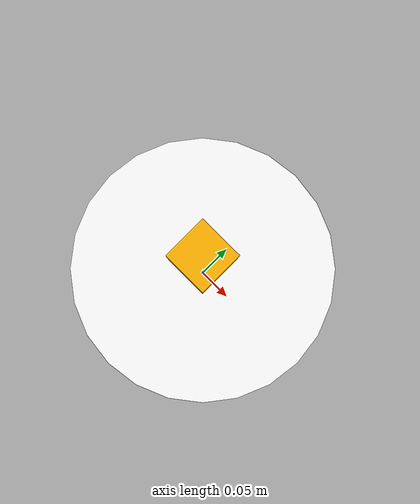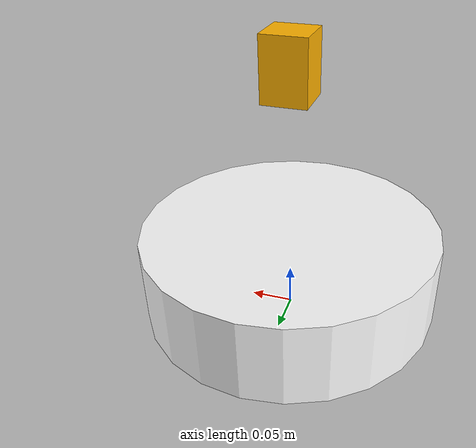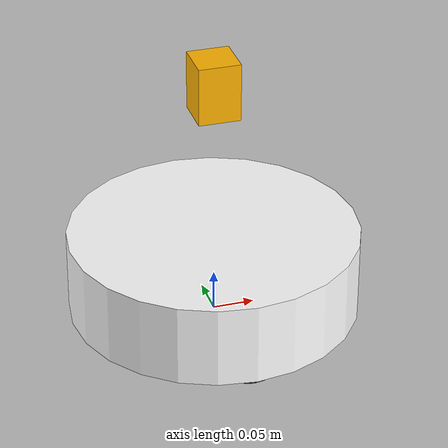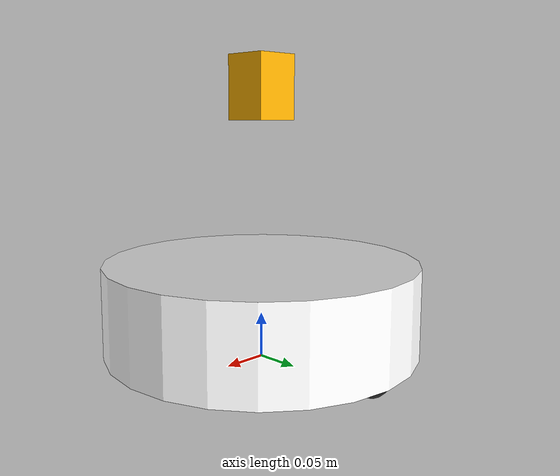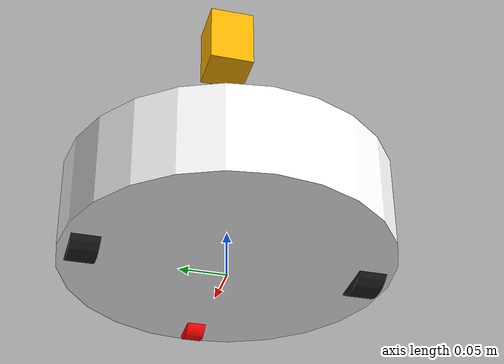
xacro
<?xml version="1.0" ?>

<robot
  xmlns:xacro="http://www.ros.org/wiki/xacro"
  name="kobuki"
  >

  <!-- ************************** Xacro ************************** -->

  <xacro:property name="bias" value="0.298" />
  <xacro:property name="wheel_radius" value="0.042" />
  <xacro:property name="pi" value="3.1415926535897931" />

  <xacro:property name="material_white">
    <material name="white">
      <color rgba="1 1 1 1"/>
    </material>
  </xacro:property>
  <xacro:property name="material_orange">
    <material name="orange">
      <color rgba="1.0 0.7 0.0 1"/>
    </material>
  </xacro:property>
  <xacro:property name="material_grey_blue">
    <material name="grey_blue">
      <color rgba="0.4 0.4 1.0 1"/>
    </material>
  </xacro:property>
  <xacro:property name="material_blue">
    <material name="blue">
      <color rgba="0.0 0.0 1.0 1"/>
    </material>
  </xacro:property>
  <xacro:property name="material_green">
    <material name="green">
      <color rgba="0 .8 0 1"/>
    </material>
  </xacro:property>
  <xacro:property name="material_black">
    <material name="black">
      <color rgba="0.1 0.1 0.1 1"/>
    </material>
  </xacro:property>
  <xacro:property name="material_red">
    <material name="red">
      <color rgba="1 0 0 1"/>
    </material>
  </xacro:property>

  <xacro:macro name="wheel" params="name length radius off_x off_y off_z type *colors">
    <link name="${name}">
      <visual>
        <geometry>
          <cylinder length="${length}" radius="${radius}"/>
     	  </geometry>
        <origin rpy="0 ${pi/2} 0" xyz="0 0 0"/>

		<xacro:insert_block name="colors" />

      </visual>
    </link>
    <joint name="${name}" type="${type}">
      <parent link="base_link"/>
      <child link="${name}"/>
      <origin rpy="0 0 ${pi/2}" xyz="${off_x} ${off_y} ${off_z}"/>
    </joint>
  </xacro:macro>

  <!-- ************************** Base *************************** -->

  <link name="base_link">
    <visual>
      <geometry>
        <cylinder length="0.1" radius="0.175"/>
   	  </geometry>
      <origin rpy="0 0 0" xyz="0 0 0.06"/>
      <xacro:insert_block name="material_white" />
    </visual>
  </link>

  <xacro:wheel name="wheel_left"  length="0.03" radius="${wheel_radius}" off_x="0"    off_y="${bias/2}"  off_z="${wheel_radius}" type="fixed">	<xacro:insert_block name="material_black"/>  </xacro:wheel>
  <xacro:wheel name="wheel_right" length="0.03" radius="${wheel_radius}" off_x="0"    off_y="-${bias/2}" off_z="${wheel_radius}" type="fixed">	<xacro:insert_block name="material_black"/>  </xacro:wheel>
  <xacro:wheel name="wheel_front" length="0.02" radius="0.02"            off_x="0.15" off_y="0"          off_z="${0.02}"         type="fixed">	<xacro:insert_block name="material_red"  />  </xacro:wheel>

  <!-- *********************** Laser Scanner ************************ -->

  <joint name="laser" type="fixed">
    <parent link="base_link"/>
    <child link="laser_link"/>
    <origin rpy="0 0 0" xyz="0 0 0.3"/>
  </joint>
  <link name="laser_link">
    <visual>
      <geometry>
        <box size="0.05 0.05 0.07" />
   	  </geometry>
      <origin rpy="0 0 0" xyz="0 0 0"/>  -->
      <xacro:insert_block name="material_orange" />
    </visual>
  </link>

  <!-- *********************** Kinect ************************ -->

</robot>
